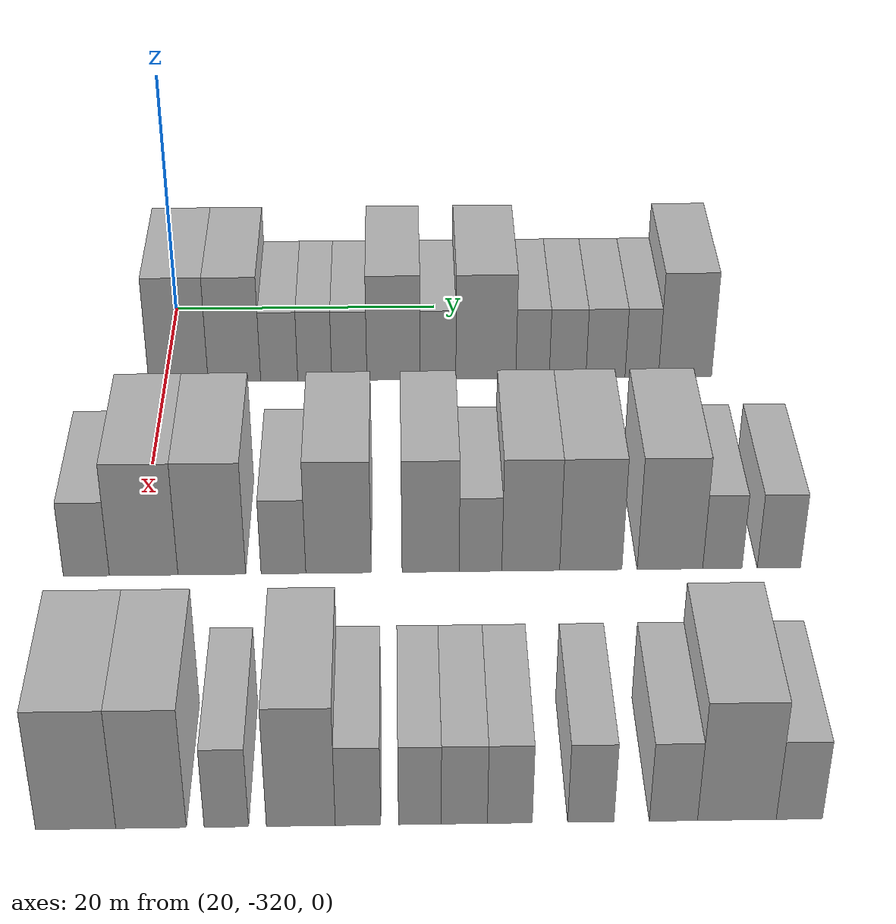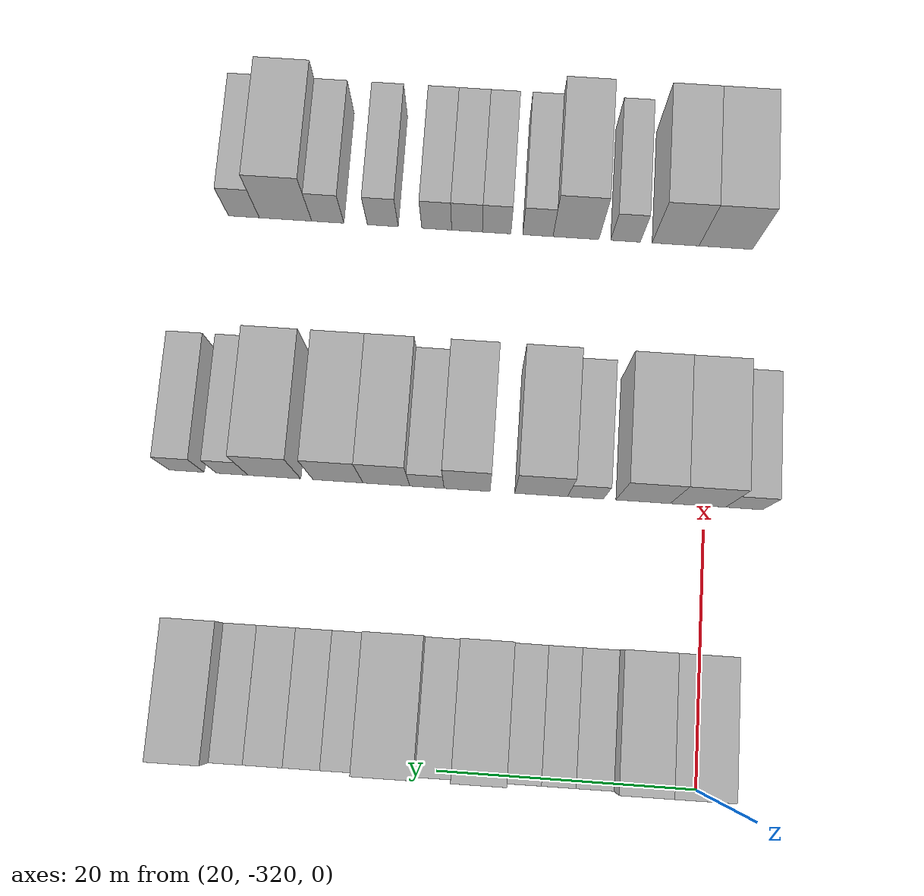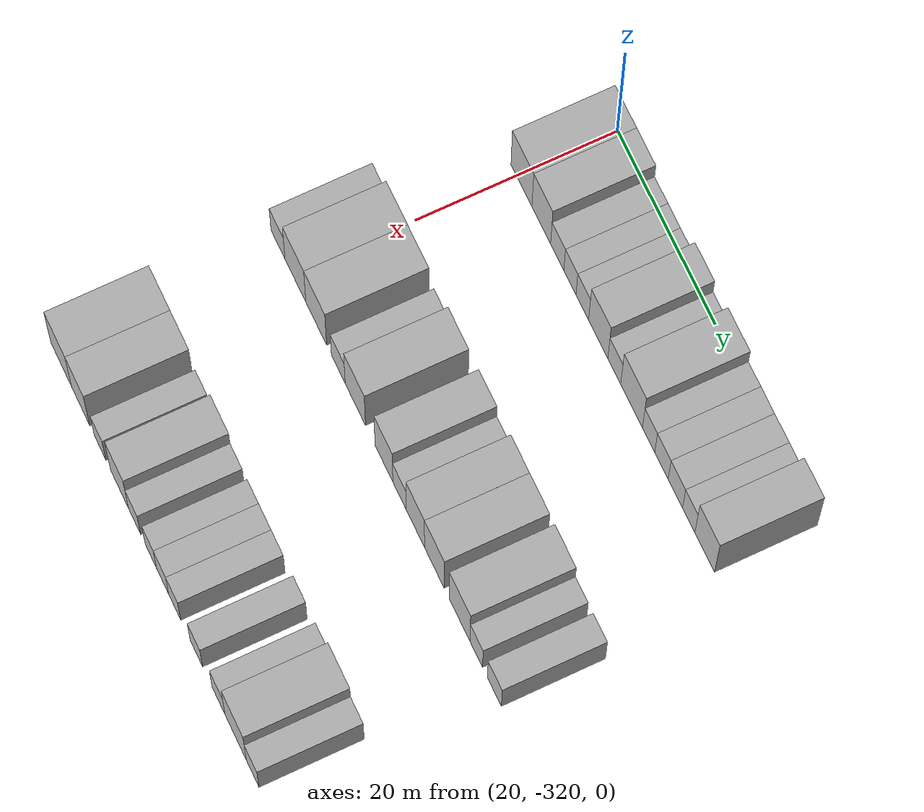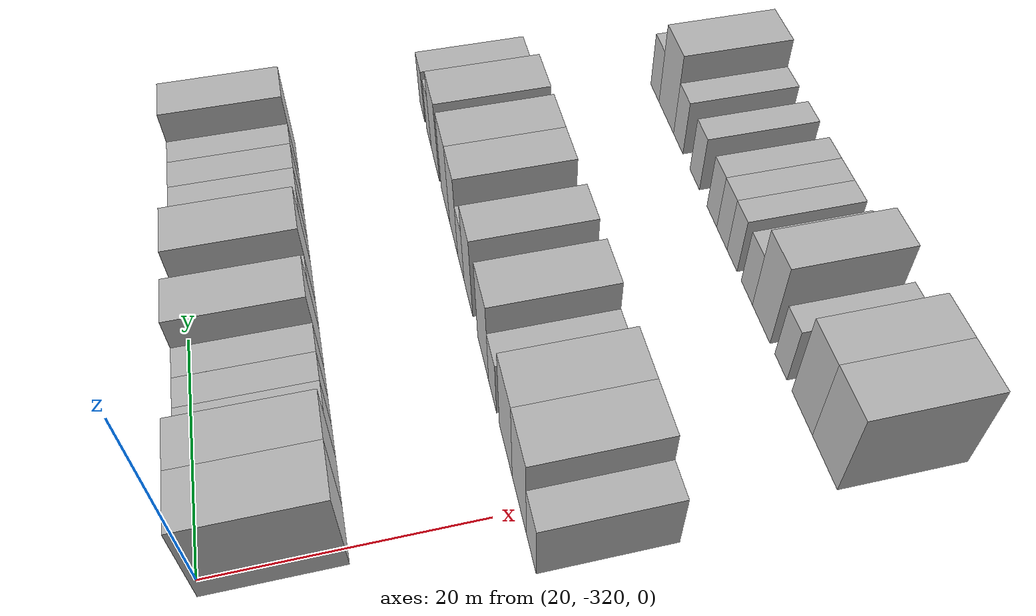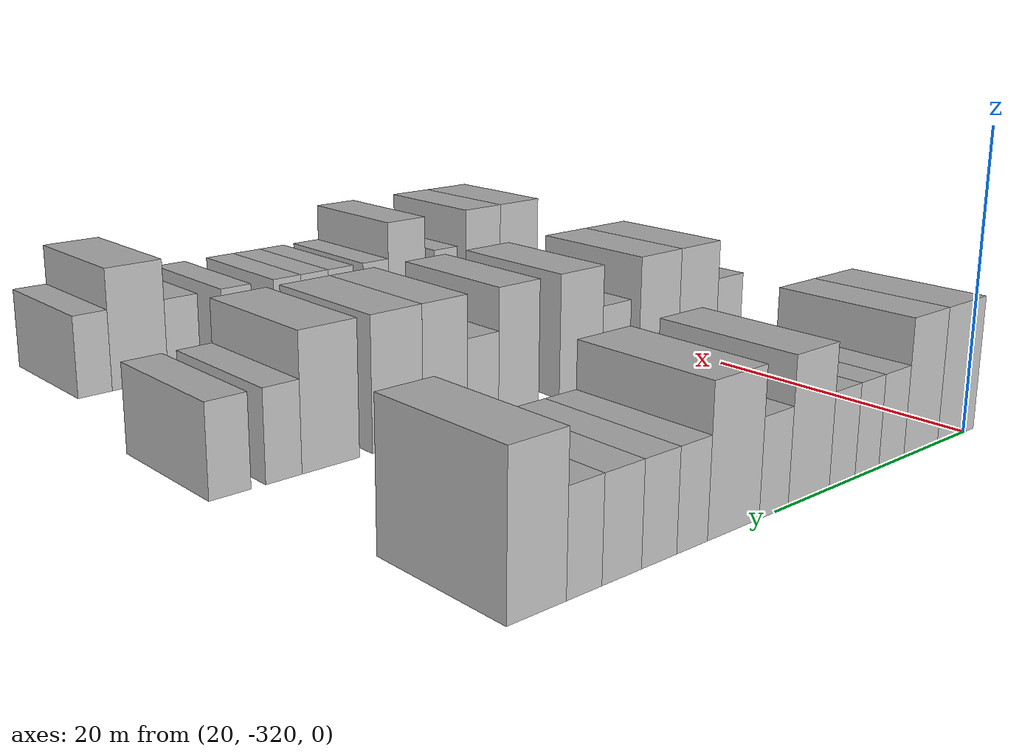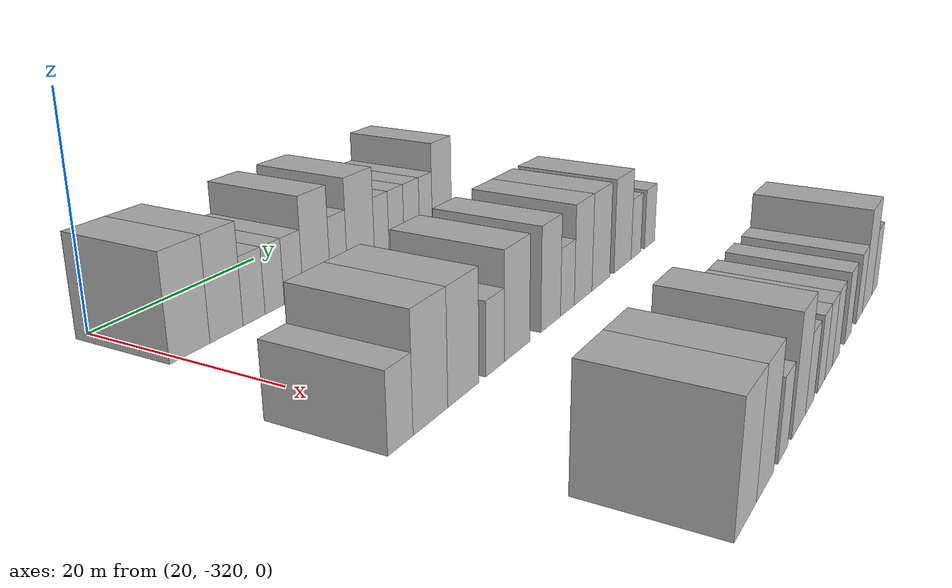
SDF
<sdf version="1.6">
 <world name="default">
  <model name="building_12">
   <static>1</static>
   <pose>25.0000 -319.0216 0 0.000000 0.000000 0.000000</pose>
   <link name="link">
    <pose>0 0 4.50 0 0 0</pose>
    <collision name="collision"><geometry><box><size>10.0000 4.3639 9.0000</size></box></geometry></collision>
    <visual name="visual">
     <cast_shadows>0</cast_shadows>
     <geometry><box><size>10.0000 4.3639 9.0000</size></box></geometry>
     <material>
      <script>
       <uri>model://HANNAS_wall/materials/scripts</uri>
       <uri>model://HANNAS_wall/materials/textures</uri>
       <name>vrc/HANNAS_wall</name>
      </script>
     </material>
    </visual>
   </link>
  </model>
  <model name="building_13">
   <static>1</static>
   <pose>25.0000 -314.9039 0 0.000000 0.000000 0.000000</pose>
   <link name="link">
    <pose>0 0 4.50 0 0 0</pose>
    <collision name="collision"><geometry><box><size>10.0000 3.8716 9.0000</size></box></geometry></collision>
    <visual name="visual">
     <cast_shadows>0</cast_shadows>
     <geometry><box><size>10.0000 3.8716 9.0000</size></box></geometry>
     <material>
      <script>
       <uri>model://HANNAS_wall/materials/scripts</uri>
       <uri>model://HANNAS_wall/materials/textures</uri>
       <name>vrc/HANNAS_wall</name>
      </script>
     </material>
    </visual>
   </link>
  </model>
  <model name="building_14">
   <static>1</static>
   <pose>25.0000 -311.6025 0 0.000000 0.000000 0.000000</pose>
   <link name="link">
    <pose>0 0 3.00 0 0 0</pose>
    <collision name="collision"><geometry><box><size>10.0000 2.7310 6.0000</size></box></geometry></collision>
    <visual name="visual">
     <cast_shadows>0</cast_shadows>
     <geometry><box><size>10.0000 2.7310 6.0000</size></box></geometry>
     <material>
      <script>
       <uri>model://HANNAS_wall/materials/scripts</uri>
       <uri>model://HANNAS_wall/materials/textures</uri>
       <name>vrc/HANNAS_wall</name>
      </script>
     </material>
    </visual>
   </link>
  </model>
  <model name="building_15">
   <static>1</static>
   <pose>25.0000 -308.9841 0 0.000000 0.000000 0.000000</pose>
   <link name="link">
    <pose>0 0 3.00 0 0 0</pose>
    <collision name="collision"><geometry><box><size>10.0000 2.5059 6.0000</size></box></geometry></collision>
    <visual name="visual">
     <cast_shadows>0</cast_shadows>
     <geometry><box><size>10.0000 2.5059 6.0000</size></box></geometry>
     <material>
      <script>
       <uri>model://HANNAS_wall/materials/scripts</uri>
       <uri>model://HANNAS_wall/materials/textures</uri>
       <name>vrc/HANNAS_wall</name>
      </script>
     </material>
    </visual>
   </link>
  </model>
  <model name="building_16">
   <static>1</static>
   <pose>25.0000 -306.4358 0 0.000000 0.000000 0.000000</pose>
   <link name="link">
    <pose>0 0 3.00 0 0 0</pose>
    <collision name="collision"><geometry><box><size>10.0000 2.5905 6.0000</size></box></geometry></collision>
    <visual name="visual">
     <cast_shadows>0</cast_shadows>
     <geometry><box><size>10.0000 2.5905 6.0000</size></box></geometry>
     <material>
      <script>
       <uri>model://HANNAS_wall/materials/scripts</uri>
       <uri>model://HANNAS_wall/materials/textures</uri>
       <name>vrc/HANNAS_wall</name>
      </script>
     </material>
    </visual>
   </link>
  </model>
  <model name="building_17">
   <static>1</static>
   <pose>25.0000 -303.1748 0 0.000000 0.000000 0.000000</pose>
   <link name="link">
    <pose>0 0 4.50 0 0 0</pose>
    <collision name="collision"><geometry><box><size>10.0000 3.9315 9.0000</size></box></geometry></collision>
    <visual name="visual">
     <cast_shadows>0</cast_shadows>
     <geometry><box><size>10.0000 3.9315 9.0000</size></box></geometry>
     <material>
      <script>
       <uri>model://HANNAS_wall/materials/scripts</uri>
       <uri>model://HANNAS_wall/materials/textures</uri>
       <name>vrc/HANNAS_wall</name>
      </script>
     </material>
    </visual>
   </link>
  </model>
  <model name="building_18">
   <static>1</static>
   <pose>25.0000 -299.8987 0 0.000000 0.000000 0.000000</pose>
   <link name="link">
    <pose>0 0 3.00 0 0 0</pose>
    <collision name="collision"><geometry><box><size>10.0000 2.6207 6.0000</size></box></geometry></collision>
    <visual name="visual">
     <cast_shadows>0</cast_shadows>
     <geometry><box><size>10.0000 2.6207 6.0000</size></box></geometry>
     <material>
      <script>
       <uri>model://HANNAS_wall/materials/scripts</uri>
       <uri>model://HANNAS_wall/materials/textures</uri>
       <name>vrc/HANNAS_wall</name>
      </script>
     </material>
    </visual>
   </link>
  </model>
  <model name="building_19">
   <static>1</static>
   <pose>25.0000 -296.3752 0 0.000000 0.000000 0.000000</pose>
   <link name="link">
    <pose>0 0 4.50 0 0 0</pose>
    <collision name="collision"><geometry><box><size>10.0000 4.4264 9.0000</size></box></geometry></collision>
    <visual name="visual">
     <cast_shadows>0</cast_shadows>
     <geometry><box><size>10.0000 4.4264 9.0000</size></box></geometry>
     <material>
      <script>
       <uri>model://HANNAS_wall/materials/scripts</uri>
       <uri>model://HANNAS_wall/materials/textures</uri>
       <name>vrc/HANNAS_wall</name>
      </script>
     </material>
    </visual>
   </link>
  </model>
  <model name="building_20">
   <static>1</static>
   <pose>25.0000 -292.9211 0 0.000000 0.000000 0.000000</pose>
   <link name="link">
    <pose>0 0 3.00 0 0 0</pose>
    <collision name="collision"><geometry><box><size>10.0000 2.4818 6.0000</size></box></geometry></collision>
    <visual name="visual">
     <cast_shadows>0</cast_shadows>
     <geometry><box><size>10.0000 2.4818 6.0000</size></box></geometry>
     <material>
      <script>
       <uri>model://HANNAS_wall/materials/scripts</uri>
       <uri>model://HANNAS_wall/materials/textures</uri>
       <name>vrc/HANNAS_wall</name>
      </script>
     </material>
    </visual>
   </link>
  </model>
  <model name="building_21">
   <static>1</static>
   <pose>25.0000 -290.3262 0 0.000000 0.000000 0.000000</pose>
   <link name="link">
    <pose>0 0 3.00 0 0 0</pose>
    <collision name="collision"><geometry><box><size>10.0000 2.7080 6.0000</size></box></geometry></collision>
    <visual name="visual">
     <cast_shadows>0</cast_shadows>
     <geometry><box><size>10.0000 2.7080 6.0000</size></box></geometry>
     <material>
      <script>
       <uri>model://HANNAS_wall/materials/scripts</uri>
       <uri>model://HANNAS_wall/materials/textures</uri>
       <name>vrc/HANNAS_wall</name>
      </script>
     </material>
    </visual>
   </link>
  </model>
  <model name="building_22">
   <static>1</static>
   <pose>25.0000 -287.5246 0 0.000000 0.000000 0.000000</pose>
   <link name="link">
    <pose>0 0 3.00 0 0 0</pose>
    <collision name="collision"><geometry><box><size>10.0000 2.8952 6.0000</size></box></geometry></collision>
    <visual name="visual">
     <cast_shadows>0</cast_shadows>
     <geometry><box><size>10.0000 2.8952 6.0000</size></box></geometry>
     <material>
      <script>
       <uri>model://HANNAS_wall/materials/scripts</uri>
       <uri>model://HANNAS_wall/materials/textures</uri>
       <name>vrc/HANNAS_wall</name>
      </script>
     </material>
    </visual>
   </link>
  </model>
  <model name="building_23">
   <static>1</static>
   <pose>25.0000 -284.8401 0 0.000000 0.000000 0.000000</pose>
   <link name="link">
    <pose>0 0 3.00 0 0 0</pose>
    <collision name="collision"><geometry><box><size>10.0000 2.4737 6.0000</size></box></geometry></collision>
    <visual name="visual">
     <cast_shadows>0</cast_shadows>
     <geometry><box><size>10.0000 2.4737 6.0000</size></box></geometry>
     <material>
      <script>
       <uri>model://HANNAS_wall/materials/scripts</uri>
       <uri>model://HANNAS_wall/materials/textures</uri>
       <name>vrc/HANNAS_wall</name>
      </script>
     </material>
    </visual>
   </link>
  </model>
  <model name="building_24">
   <static>1</static>
   <pose>25.0000 -281.6350 0 0.000000 0.000000 0.000000</pose>
   <link name="link">
    <pose>0 0 4.50 0 0 0</pose>
    <collision name="collision"><geometry><box><size>10.0000 3.9365 9.0000</size></box></geometry></collision>
    <visual name="visual">
     <cast_shadows>0</cast_shadows>
     <geometry><box><size>10.0000 3.9365 9.0000</size></box></geometry>
     <material>
      <script>
       <uri>model://HANNAS_wall/materials/scripts</uri>
       <uri>model://HANNAS_wall/materials/textures</uri>
       <name>vrc/HANNAS_wall</name>
      </script>
     </material>
    </visual>
   </link>
  </model>
  <model name="building_202">
   <static>1</static>
   <pose>47.0000 -323.1811 0 0.000000 0.000000 0.000000</pose>
   <link name="link">
    <pose>0 0 3.00 0 0 0</pose>
    <collision name="collision"><geometry><box><size>10.0000 2.9801 6.0000</size></box></geometry></collision>
    <visual name="visual">
     <cast_shadows>0</cast_shadows>
     <geometry><box><size>10.0000 2.9801 6.0000</size></box></geometry>
     <material>
      <script>
       <uri>model://HANNAS_wall/materials/scripts</uri>
       <uri>model://HANNAS_wall/materials/textures</uri>
       <name>vrc/HANNAS_wall</name>
      </script>
     </material>
    </visual>
   </link>
  </model>
  <model name="building_203">
   <static>1</static>
   <pose>47.0000 -319.4711 0 0.000000 0.000000 0.000000</pose>
   <link name="link">
    <pose>0 0 4.50 0 0 0</pose>
    <collision name="collision"><geometry><box><size>10.0000 4.4400 9.0000</size></box></geometry></collision>
    <visual name="visual">
     <cast_shadows>0</cast_shadows>
     <geometry><box><size>10.0000 4.4400 9.0000</size></box></geometry>
     <material>
      <script>
       <uri>model://HANNAS_wall/materials/scripts</uri>
       <uri>model://HANNAS_wall/materials/textures</uri>
       <name>vrc/HANNAS_wall</name>
      </script>
     </material>
    </visual>
   </link>
  </model>
  <model name="building_204">
   <static>1</static>
   <pose>47.0000 -315.0537 0 0.000000 0.000000 0.000000</pose>
   <link name="link">
    <pose>0 0 4.50 0 0 0</pose>
    <collision name="collision"><geometry><box><size>10.0000 4.3947 9.0000</size></box></geometry></collision>
    <visual name="visual">
     <cast_shadows>0</cast_shadows>
     <geometry><box><size>10.0000 4.3947 9.0000</size></box></geometry>
     <material>
      <script>
       <uri>model://HANNAS_wall/materials/scripts</uri>
       <uri>model://HANNAS_wall/materials/textures</uri>
       <name>vrc/HANNAS_wall</name>
      </script>
     </material>
    </visual>
   </link>
  </model>
  <model name="building_205">
   <static>1</static>
   <pose>47.0000 -310.4044 0 0.000000 0.000000 0.000000</pose>
   <link name="link">
    <pose>0 0 3.00 0 0 0</pose>
    <collision name="collision"><geometry><box><size>10.0000 2.9040 6.0000</size></box></geometry></collision>
    <visual name="visual">
     <cast_shadows>0</cast_shadows>
     <geometry><box><size>10.0000 2.9040 6.0000</size></box></geometry>
     <material>
      <script>
       <uri>model://HANNAS_wall/materials/scripts</uri>
       <uri>model://HANNAS_wall/materials/textures</uri>
       <name>vrc/HANNAS_wall</name>
      </script>
     </material>
    </visual>
   </link>
  </model>
  <model name="building_206">
   <static>1</static>
   <pose>47.0000 -306.8238 0 0.000000 0.000000 0.000000</pose>
   <link name="link">
    <pose>0 0 4.50 0 0 0</pose>
    <collision name="collision"><geometry><box><size>10.0000 4.2571 9.0000</size></box></geometry></collision>
    <visual name="visual">
     <cast_shadows>0</cast_shadows>
     <geometry><box><size>10.0000 4.2571 9.0000</size></box></geometry>
     <material>
      <script>
       <uri>model://HANNAS_wall/materials/scripts</uri>
       <uri>model://HANNAS_wall/materials/textures</uri>
       <name>vrc/HANNAS_wall</name>
      </script>
     </material>
    </visual>
   </link>
  </model>
  <model name="building_207">
   <static>1</static>
   <pose>47.0000 -300.8416 0 0.000000 0.000000 0.000000</pose>
   <link name="link">
    <pose>0 0 4.50 0 0 0</pose>
    <collision name="collision"><geometry><box><size>10.0000 3.7074 9.0000</size></box></geometry></collision>
    <visual name="visual">
     <cast_shadows>0</cast_shadows>
     <geometry><box><size>10.0000 3.7074 9.0000</size></box></geometry>
     <material>
      <script>
       <uri>model://HANNAS_wall/materials/scripts</uri>
       <uri>model://HANNAS_wall/materials/textures</uri>
       <name>vrc/HANNAS_wall</name>
      </script>
     </material>
    </visual>
   </link>
  </model>
  <model name="building_208">
   <static>1</static>
   <pose>47.0000 -297.5994 0 0.000000 0.000000 0.000000</pose>
   <link name="link">
    <pose>0 0 3.00 0 0 0</pose>
    <collision name="collision"><geometry><box><size>10.0000 2.7769 6.0000</size></box></geometry></collision>
    <visual name="visual">
     <cast_shadows>0</cast_shadows>
     <geometry><box><size>10.0000 2.7769 6.0000</size></box></geometry>
     <material>
      <script>
       <uri>model://HANNAS_wall/materials/scripts</uri>
       <uri>model://HANNAS_wall/materials/textures</uri>
       <name>vrc/HANNAS_wall</name>
      </script>
     </material>
    </visual>
   </link>
  </model>
  <model name="building_209">
   <static>1</static>
   <pose>47.0000 -294.3260 0 0.000000 0.000000 0.000000</pose>
   <link name="link">
    <pose>0 0 4.50 0 0 0</pose>
    <collision name="collision"><geometry><box><size>10.0000 3.7700 9.0000</size></box></geometry></collision>
    <visual name="visual">
     <cast_shadows>0</cast_shadows>
     <geometry><box><size>10.0000 3.7700 9.0000</size></box></geometry>
     <material>
      <script>
       <uri>model://HANNAS_wall/materials/scripts</uri>
       <uri>model://HANNAS_wall/materials/textures</uri>
       <name>vrc/HANNAS_wall</name>
      </script>
     </material>
    </visual>
   </link>
  </model>
  <model name="building_210">
   <static>1</static>
   <pose>47.0000 -290.4123 0 0.000000 0.000000 0.000000</pose>
   <link name="link">
    <pose>0 0 4.50 0 0 0</pose>
    <collision name="collision"><geometry><box><size>10.0000 4.0572 9.0000</size></box></geometry></collision>
    <visual name="visual">
     <cast_shadows>0</cast_shadows>
     <geometry><box><size>10.0000 4.0572 9.0000</size></box></geometry>
     <material>
      <script>
       <uri>model://HANNAS_wall/materials/scripts</uri>
       <uri>model://HANNAS_wall/materials/textures</uri>
       <name>vrc/HANNAS_wall</name>
      </script>
     </material>
    </visual>
   </link>
  </model>
  <model name="building_211">
   <static>1</static>
   <pose>47.0000 -285.2453 0 0.000000 0.000000 0.000000</pose>
   <link name="link">
    <pose>0 0 4.50 0 0 0</pose>
    <collision name="collision"><geometry><box><size>10.0000 4.2769 9.0000</size></box></geometry></collision>
    <visual name="visual">
     <cast_shadows>0</cast_shadows>
     <geometry><box><size>10.0000 4.2769 9.0000</size></box></geometry>
     <material>
      <script>
       <uri>model://HANNAS_wall/materials/scripts</uri>
       <uri>model://HANNAS_wall/materials/textures</uri>
       <name>vrc/HANNAS_wall</name>
      </script>
     </material>
    </visual>
   </link>
  </model>
  <model name="building_212">
   <static>1</static>
   <pose>47.0000 -281.8236 0 0.000000 0.000000 0.000000</pose>
   <link name="link">
    <pose>0 0 3.00 0 0 0</pose>
    <collision name="collision"><geometry><box><size>10.0000 2.5663 6.0000</size></box></geometry></collision>
    <visual name="visual">
     <cast_shadows>0</cast_shadows>
     <geometry><box><size>10.0000 2.5663 6.0000</size></box></geometry>
     <material>
      <script>
       <uri>model://HANNAS_wall/materials/scripts</uri>
       <uri>model://HANNAS_wall/materials/textures</uri>
       <name>vrc/HANNAS_wall</name>
      </script>
     </material>
    </visual>
   </link>
  </model>
  <model name="building_213">
   <static>1</static>
   <pose>47.0000 -278.1265 0 0.000000 0.000000 0.000000</pose>
   <link name="link">
    <pose>0 0 3.00 0 0 0</pose>
    <collision name="collision"><geometry><box><size>10.0000 2.8280 6.0000</size></box></geometry></collision>
    <visual name="visual">
     <cast_shadows>0</cast_shadows>
     <geometry><box><size>10.0000 2.8280 6.0000</size></box></geometry>
     <material>
      <script>
       <uri>model://HANNAS_wall/materials/scripts</uri>
       <uri>model://HANNAS_wall/materials/textures</uri>
       <name>vrc/HANNAS_wall</name>
      </script>
     </material>
    </visual>
   </link>
  </model>
  <model name="building_389">
   <static>1</static>
   <pose>69.0000 -321.1715 0 0.000000 0.000000 0.000000</pose>
   <link name="link">
    <pose>0 0 4.50 0 0 0</pose>
    <collision name="collision"><geometry><box><size>10.0000 4.4941 9.0000</size></box></geometry></collision>
    <visual name="visual">
     <cast_shadows>0</cast_shadows>
     <geometry><box><size>10.0000 4.4941 9.0000</size></box></geometry>
     <material>
      <script>
       <uri>model://HANNAS_wall/materials/scripts</uri>
       <uri>model://HANNAS_wall/materials/textures</uri>
       <name>vrc/HANNAS_wall</name>
      </script>
     </material>
    </visual>
   </link>
  </model>
  <model name="building_390">
   <static>1</static>
   <pose>69.0000 -316.9465 0 0.000000 0.000000 0.000000</pose>
   <link name="link">
    <pose>0 0 4.50 0 0 0</pose>
    <collision name="collision"><geometry><box><size>10.0000 3.9558 9.0000</size></box></geometry></collision>
    <visual name="visual">
     <cast_shadows>0</cast_shadows>
     <geometry><box><size>10.0000 3.9558 9.0000</size></box></geometry>
     <material>
      <script>
       <uri>model://HANNAS_wall/materials/scripts</uri>
       <uri>model://HANNAS_wall/materials/textures</uri>
       <name>vrc/HANNAS_wall</name>
      </script>
     </material>
    </visual>
   </link>
  </model>
  <model name="building_391">
   <static>1</static>
   <pose>69.0000 -312.7215 0 0.000000 0.000000 0.000000</pose>
   <link name="link">
    <pose>0 0 3.00 0 0 0</pose>
    <collision name="collision"><geometry><box><size>10.0000 2.4941 6.0000</size></box></geometry></collision>
    <visual name="visual">
     <cast_shadows>0</cast_shadows>
     <geometry><box><size>10.0000 2.4941 6.0000</size></box></geometry>
     <material>
      <script>
       <uri>model://HANNAS_wall/materials/scripts</uri>
       <uri>model://HANNAS_wall/materials/textures</uri>
       <name>vrc/HANNAS_wall</name>
      </script>
     </material>
    </visual>
   </link>
  </model>
  <model name="building_392">
   <static>1</static>
   <pose>69.0000 -308.5383 0 0.000000 0.000000 0.000000</pose>
   <link name="link">
    <pose>0 0 4.50 0 0 0</pose>
    <collision name="collision"><geometry><box><size>10.0000 3.8724 9.0000</size></box></geometry></collision>
    <visual name="visual">
     <cast_shadows>0</cast_shadows>
     <geometry><box><size>10.0000 3.8724 9.0000</size></box></geometry>
     <material>
      <script>
       <uri>model://HANNAS_wall/materials/scripts</uri>
       <uri>model://HANNAS_wall/materials/textures</uri>
       <name>vrc/HANNAS_wall</name>
      </script>
     </material>
    </visual>
   </link>
  </model>
  <model name="building_393">
   <static>1</static>
   <pose>69.0000 -305.3226 0 0.000000 0.000000 0.000000</pose>
   <link name="link">
    <pose>0 0 3.00 0 0 0</pose>
    <collision name="collision"><geometry><box><size>10.0000 2.5590 6.0000</size></box></geometry></collision>
    <visual name="visual">
     <cast_shadows>0</cast_shadows>
     <geometry><box><size>10.0000 2.5590 6.0000</size></box></geometry>
     <material>
      <script>
       <uri>model://HANNAS_wall/materials/scripts</uri>
       <uri>model://HANNAS_wall/materials/textures</uri>
       <name>vrc/HANNAS_wall</name>
      </script>
     </material>
    </visual>
   </link>
  </model>
  <model name="building_394">
   <static>1</static>
   <pose>69.0000 -301.8409 0 0.000000 0.000000 0.000000</pose>
   <link name="link">
    <pose>0 0 3.00 0 0 0</pose>
    <collision name="collision"><geometry><box><size>10.0000 2.4045 6.0000</size></box></geometry></collision>
    <visual name="visual">
     <cast_shadows>0</cast_shadows>
     <geometry><box><size>10.0000 2.4045 6.0000</size></box></geometry>
     <material>
      <script>
       <uri>model://HANNAS_wall/materials/scripts</uri>
       <uri>model://HANNAS_wall/materials/textures</uri>
       <name>vrc/HANNAS_wall</name>
      </script>
     </material>
    </visual>
   </link>
  </model>
  <model name="building_395">
   <static>1</static>
   <pose>69.0000 -299.3394 0 0.000000 0.000000 0.000000</pose>
   <link name="link">
    <pose>0 0 3.00 0 0 0</pose>
    <collision name="collision"><geometry><box><size>10.0000 2.5984 6.0000</size></box></geometry></collision>
    <visual name="visual">
     <cast_shadows>0</cast_shadows>
     <geometry><box><size>10.0000 2.5984 6.0000</size></box></geometry>
     <material>
      <script>
       <uri>model://HANNAS_wall/materials/scripts</uri>
       <uri>model://HANNAS_wall/materials/textures</uri>
       <name>vrc/HANNAS_wall</name>
      </script>
     </material>
    </visual>
   </link>
  </model>
  <model name="building_396">
   <static>1</static>
   <pose>69.0000 -296.7769 0 0.000000 0.000000 0.000000</pose>
   <link name="link">
    <pose>0 0 3.00 0 0 0</pose>
    <collision name="collision"><geometry><box><size>10.0000 2.5267 6.0000</size></box></geometry></collision>
    <visual name="visual">
     <cast_shadows>0</cast_shadows>
     <geometry><box><size>10.0000 2.5267 6.0000</size></box></geometry>
     <material>
      <script>
       <uri>model://HANNAS_wall/materials/scripts</uri>
       <uri>model://HANNAS_wall/materials/textures</uri>
       <name>vrc/HANNAS_wall</name>
      </script>
     </material>
    </visual>
   </link>
  </model>
  <model name="building_397">
   <static>1</static>
   <pose>69.0000 -292.2097 0 0.000000 0.000000 0.000000</pose>
   <link name="link">
    <pose>0 0 3.00 0 0 0</pose>
    <collision name="collision"><geometry><box><size>10.0000 2.6076 6.0000</size></box></geometry></collision>
    <visual name="visual">
     <cast_shadows>0</cast_shadows>
     <geometry><box><size>10.0000 2.6076 6.0000</size></box></geometry>
     <material>
      <script>
       <uri>model://HANNAS_wall/materials/scripts</uri>
       <uri>model://HANNAS_wall/materials/textures</uri>
       <name>vrc/HANNAS_wall</name>
      </script>
     </material>
    </visual>
   </link>
  </model>
  <model name="building_398">
   <static>1</static>
   <pose>69.0000 -287.5438 0 0.000000 0.000000 0.000000</pose>
   <link name="link">
    <pose>0 0 3.00 0 0 0</pose>
    <collision name="collision"><geometry><box><size>10.0000 2.7244 6.0000</size></box></geometry></collision>
    <visual name="visual">
     <cast_shadows>0</cast_shadows>
     <geometry><box><size>10.0000 2.7244 6.0000</size></box></geometry>
     <material>
      <script>
       <uri>model://HANNAS_wall/materials/scripts</uri>
       <uri>model://HANNAS_wall/materials/textures</uri>
       <name>vrc/HANNAS_wall</name>
      </script>
     </material>
    </visual>
   </link>
  </model>
  <model name="building_399">
   <static>1</static>
   <pose>69.0000 -283.9556 0 0.000000 0.000000 0.000000</pose>
   <link name="link">
    <pose>0 0 4.50 0 0 0</pose>
    <collision name="collision"><geometry><box><size>10.0000 4.4520 9.0000</size></box></geometry></collision>
    <visual name="visual">
     <cast_shadows>0</cast_shadows>
     <geometry><box><size>10.0000 4.4520 9.0000</size></box></geometry>
     <material>
      <script>
       <uri>model://HANNAS_wall/materials/scripts</uri>
       <uri>model://HANNAS_wall/materials/textures</uri>
       <name>vrc/HANNAS_wall</name>
      </script>
     </material>
    </visual>
   </link>
  </model>
  <model name="building_400">
   <static>1</static>
   <pose>69.0000 -280.4226 0 0.000000 0.000000 0.000000</pose>
   <link name="link">
    <pose>0 0 3.00 0 0 0</pose>
    <collision name="collision"><geometry><box><size>10.0000 2.6141 6.0000</size></box></geometry></collision>
    <visual name="visual">
     <cast_shadows>0</cast_shadows>
     <geometry><box><size>10.0000 2.6141 6.0000</size></box></geometry>
     <material>
      <script>
       <uri>model://HANNAS_wall/materials/scripts</uri>
       <uri>model://HANNAS_wall/materials/textures</uri>
       <name>vrc/HANNAS_wall</name>
      </script>
     </material>
    </visual>
   </link>
  </model>
 </world>
</sdf>
